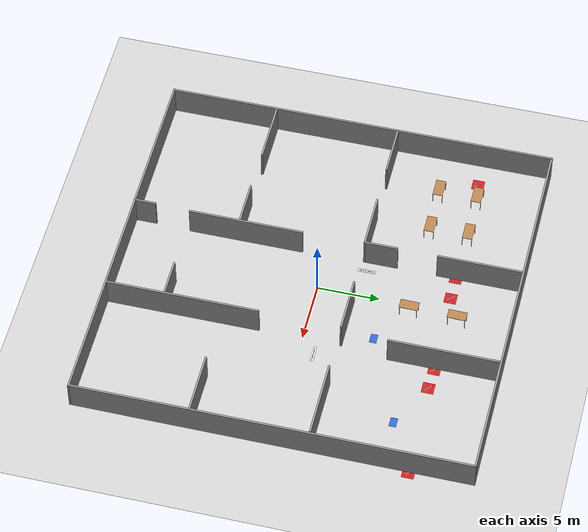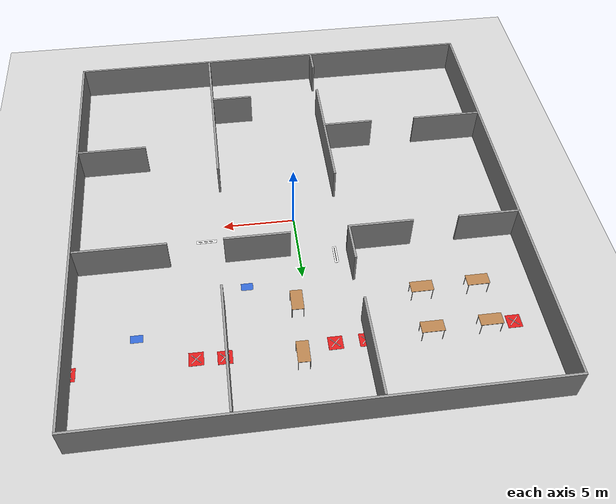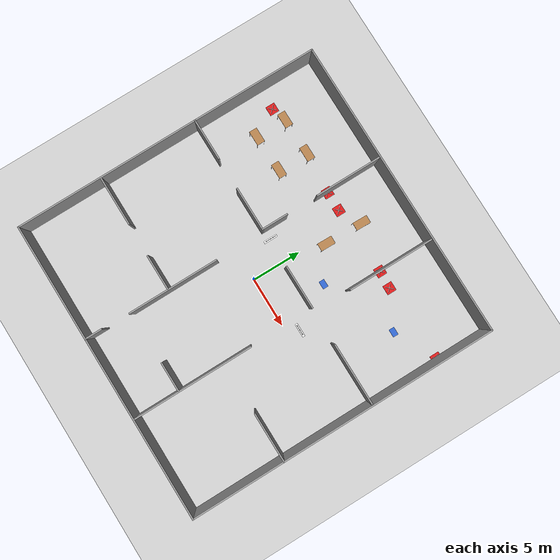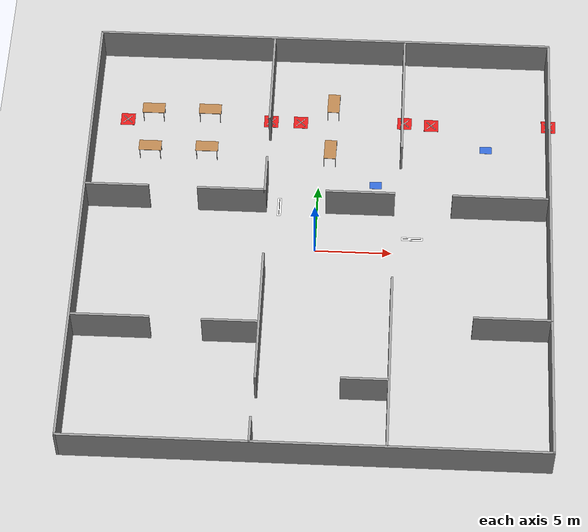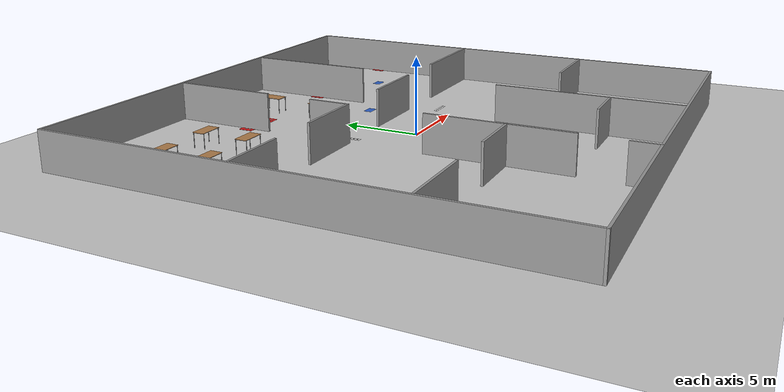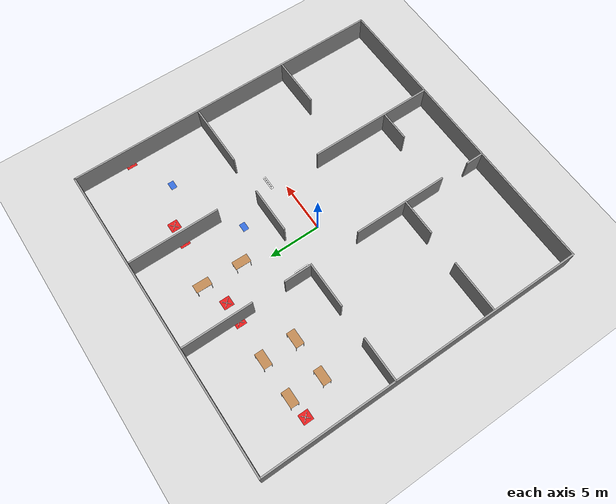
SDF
<sdf version="1.7">
 <world name="default">
  <model name="ground_plane">
   <static>1</static>
   <link name="link">
    <collision name="collision">
     <geometry><plane><normal>0 0 1</normal><size>100 100</size></plane></geometry>
     <surface>
      <contact><collide_bitmask>65535</collide_bitmask></contact>
      <friction><ode><mu>100</mu><mu2>50</mu2></ode></friction>
     </surface>
    </collision>
    <visual name="visual">
     <cast_shadows>0</cast_shadows>
     <geometry><plane><normal>0 0 1</normal><size>100 100</size></plane></geometry>
     <material>
      <script><uri>file://media/materials/scripts/gazebo.material</uri><name>Gazebo/Grey</name></script>
     </material>
    </visual>
   </link>
  </model>
  <model name="study">
   <link name="Wall_0">
    <collision name="Wall_0_Collision">
     <geometry><box><size>30.5 0.15 2.5</size></box></geometry>
     <pose>0 0 1.25 0 -0 0</pose>
    </collision>
    <visual name="Wall_0_Visual">
     <pose>0 0 1.25 0 -0 0</pose>
     <geometry><box><size>30.5 0.15 2.5</size></box></geometry>
     <material>
      <script><uri>file://media/materials/scripts/gazebo.material</uri><name>Gazebo/Grey</name></script>
      <ambient>1 1 1 1</ambient>
     </material>
     <meta><layer>0</layer></meta>
    </visual>
    <pose>0 15.675 0 0 -0 0</pose>
   </link>
   <link name="Wall_1">
    <collision name="Wall_1_Collision">
     <geometry><box><size>31.5 0.15 2.5</size></box></geometry>
     <pose>0 0 1.25 0 -0 0</pose>
    </collision>
    <visual name="Wall_1_Visual">
     <pose>0 0 1.25 0 -0 0</pose>
     <geometry><box><size>31.5 0.15 2.5</size></box></geometry>
     <material>
      <script><uri>file://media/materials/scripts/gazebo.material</uri><name>Gazebo/Grey</name></script>
      <ambient>1 1 1 1</ambient>
     </material>
     <meta><layer>0</layer></meta>
    </visual>
    <pose>15.175 -0 0 0 -0 -1.5708</pose>
   </link>
   <link name="Wall_10">
    <collision name="Wall_10_Collision">
     <geometry><box><size>4.25 0.15 2.5</size></box></geometry>
     <pose>0 0 1.25 0 -0 0</pose>
    </collision>
    <visual name="Wall_10_Visual">
     <pose>0 0 1.25 0 -0 0</pose>
     <geometry><box><size>4.25 0.15 2.5</size></box></geometry>
     <material>
      <script><uri>file://media/materials/scripts/gazebo.material</uri><name>Gazebo/Grey</name></script>
      <ambient>1 1 1 1</ambient>
     </material>
     <meta><layer>0</layer></meta>
    </visual>
    <pose>-13.0898 3.04582 0 0 -0 0</pose>
   </link>
   <link name="Wall_12">
    <collision name="Wall_12_Collision">
     <geometry><box><size>4.5 0.15 2.5</size></box></geometry>
     <pose>0 0 1.25 0 -0 0</pose>
    </collision>
    <visual name="Wall_12_Visual">
     <pose>0 0 1.25 0 -0 0</pose>
     <geometry><box><size>4.5 0.15 2.5</size></box></geometry>
     <material>
      <script><uri>file://media/materials/scripts/gazebo.material</uri><name>Gazebo/Grey</name></script>
      <ambient>1 1 1 1</ambient>
     </material>
     <meta><layer>0</layer></meta>
    </visual>
    <pose>2.83044 3.081 0 0 -0 0</pose>
   </link>
   <link name="Wall_14">
    <collision name="Wall_14_Collision">
     <geometry><box><size>6.25 0.15 2.5</size></box></geometry>
     <pose>0 0 1.25 0 -0 0</pose>
    </collision>
    <visual name="Wall_14_Visual">
     <pose>0 0 1.25 0 -0 0</pose>
     <geometry><box><size>6.25 0.15 2.5</size></box></geometry>
     <material>
      <script><uri>file://media/materials/scripts/gazebo.material</uri><name>Gazebo/Grey</name></script>
      <ambient>1 1 1 1</ambient>
     </material>
     <meta><layer>0</layer></meta>
    </visual>
    <pose>11.9373 3.04582 0 0 -0 0</pose>
   </link>
   <link name="Wall_16">
    <collision name="Wall_16_Collision">
     <geometry><box><size>5 0.15 2.5</size></box></geometry>
     <pose>0 0 1.25 0 -0 0</pose>
    </collision>
    <visual name="Wall_16_Visual">
     <pose>0 0 1.25 0 -0 0</pose>
     <geometry><box><size>5 0.15 2.5</size></box></geometry>
     <material>
      <script><uri>file://media/materials/scripts/gazebo.material</uri><name>Gazebo/Grey</name></script>
      <ambient>1 1 1 1</ambient>
     </material>
     <meta><layer>0</layer></meta>
    </visual>
    <pose>-12.6093 -7.0153 0 0 -0 0</pose>
   </link>
   <link name="Wall_18">
    <collision name="Wall_18_Collision">
     <geometry><box><size>3.604 0.15 2.5</size></box></geometry>
     <pose>0 0 1.25 0 -0 0</pose>
    </collision>
    <visual name="Wall_18_Visual">
     <pose>0 0 1.25 0 -0 0</pose>
     <geometry><box><size>3.604 0.15 2.5</size></box></geometry>
     <material>
      <script><uri>file://media/materials/scripts/gazebo.material</uri><name>Gazebo/Grey</name></script>
      <ambient>1 1 1 1</ambient>
     </material>
     <meta><layer>0</layer></meta>
    </visual>
    <pose>-5.04028 -7.08345 0 0 -0 0.001282</pose>
   </link>
   <link name="Wall_2">
    <collision name="Wall_2_Collision">
     <geometry><box><size>30.5 0.15 2.5</size></box></geometry>
     <pose>0 0 1.25 0 -0 0</pose>
    </collision>
    <visual name="Wall_2_Visual">
     <pose>0 0 1.25 0 -0 0</pose>
     <geometry><box><size>30.5 0.15 2.5</size></box></geometry>
     <material>
      <script><uri>file://media/materials/scripts/gazebo.material</uri><name>Gazebo/Grey</name></script>
      <ambient>1 1 1 1</ambient>
     </material>
     <meta><layer>0</layer></meta>
    </visual>
    <pose>0 -15.675 0 0 -0 3.14159</pose>
   </link>
   <link name="Wall_20">
    <collision name="Wall_20_Collision">
     <geometry><box><size>9.25 0.15 2.5</size></box></geometry>
     <pose>0 0 1.25 0 -0 0</pose>
    </collision>
    <visual name="Wall_20_Visual">
     <pose>0 0 1.25 0 -0 0</pose>
     <geometry><box><size>9.25 0.15 2.5</size></box></geometry>
     <material>
      <script><uri>file://media/materials/scripts/gazebo.material</uri><name>Gazebo/Grey</name></script>
      <ambient>1 1 1 1</ambient>
     </material>
     <meta><layer>0</layer></meta>
    </visual>
    <pose>-3.21422 -6.56992 0 0 -0 -1.5708</pose>
   </link>
   <link name="Wall_25">
    <collision name="Wall_25_Collision">
     <geometry><box><size>1.75 0.15 2.5</size></box></geometry>
     <pose>0 0 1.25 0 -0 0</pose>
    </collision>
    <visual name="Wall_25_Visual">
     <pose>0 0 1.25 0 -0 0</pose>
     <geometry><box><size>1.75 0.15 2.5</size></box></geometry>
     <material>
      <script><uri>file://media/materials/scripts/gazebo.material</uri><name>Gazebo/Grey</name></script>
      <ambient>1 1 1 1</ambient>
     </material>
     <meta><layer>0</layer></meta>
    </visual>
    <pose>-3.32253 -14.8206 0 0 -0 1.5708</pose>
   </link>
   <link name="Wall_27">
    <collision name="Wall_27_Collision">
     <geometry><box><size>12.25 0.15 2.5</size></box></geometry>
     <pose>0 0 1.25 0 -0 0</pose>
    </collision>
    <visual name="Wall_27_Visual">
     <pose>0 0 1.25 0 -0 0</pose>
     <geometry><box><size>12.25 0.15 2.5</size></box></geometry>
     <material>
      <script><uri>file://media/materials/scripts/gazebo.material</uri><name>Gazebo/Grey</name></script>
      <ambient>1 1 1 1</ambient>
     </material>
     <meta><layer>0</layer></meta>
    </visual>
    <pose>5.05747 -9.53064 0 0 -0 1.5708</pose>
   </link>
   <link name="Wall_29">
    <collision name="Wall_29_Collision">
     <geometry><box><size>8.75 0.15 2.5</size></box></geometry>
     <pose>0 0 1.25 0 -0 0</pose>
    </collision>
    <visual name="Wall_29_Visual">
     <pose>0 0 1.25 0 -0 0</pose>
     <geometry><box><size>8.75 0.15 2.5</size></box></geometry>
     <material>
      <script><uri>file://media/materials/scripts/gazebo.material</uri><name>Gazebo/Grey</name></script>
      <ambient>1 1 1 1</ambient>
     </material>
     <meta><layer>0</layer></meta>
    </visual>
    <pose>5.43881 11.1887 0 0 -0 -1.5708</pose>
   </link>
   <link name="Wall_3">
    <collision name="Wall_3_Collision">
     <geometry><box><size>31.5 0.15 2.5</size></box></geometry>
     <pose>0 0 1.25 0 -0 0</pose>
    </collision>
    <visual name="Wall_3_Visual">
     <pose>0 0 1.25 0 -0 0</pose>
     <geometry><box><size>31.5 0.15 2.5</size></box></geometry>
     <material>
      <script><uri>file://media/materials/scripts/gazebo.material</uri><name>Gazebo/Grey</name></script>
      <ambient>1 1 1 1</ambient>
     </material>
     <meta><layer>0</layer></meta>
    </visual>
    <pose>-15.175 -0 0 0 -0 1.5708</pose>
   </link>
   <link name="Wall_31">
    <collision name="Wall_31_Collision">
     <geometry><box><size>5 0.15 2.5</size></box></geometry>
     <pose>0 0 1.25 0 -0 0</pose>
    </collision>
    <visual name="Wall_31_Visual">
     <pose>0 0 1.25 0 -0 0</pose>
     <geometry><box><size>5 0.15 2.5</size></box></geometry>
     <material>
      <script><uri>file://media/materials/scripts/gazebo.material</uri><name>Gazebo/Grey</name></script>
      <ambient>1 1 1 1</ambient>
     </material>
     <meta><layer>0</layer></meta>
    </visual>
    <pose>12.7212 -6.25406 0 0 -0 0</pose>
   </link>
   <link name="Wall_33">
    <collision name="Wall_33_Collision">
     <geometry><box><size>3 0.15 2.5</size></box></geometry>
     <pose>0 0 1.25 0 -0 0</pose>
    </collision>
    <visual name="Wall_33_Visual">
     <pose>0 0 1.25 0 -0 0</pose>
     <geometry><box><size>3 0.15 2.5</size></box></geometry>
     <material>
      <script><uri>file://media/materials/scripts/gazebo.material</uri><name>Gazebo/Grey</name></script>
      <ambient>1 1 1 1</ambient>
     </material>
     <meta><layer>0</layer></meta>
    </visual>
    <pose>3.533 -10.9727 0 0 -0 0</pose>
   </link>
   <link name="Wall_5">
    <collision name="Wall_5_Collision">
     <geometry><box><size>6.75 0.15 2.5</size></box></geometry>
     <pose>0 0 1.25 0 -0 0</pose>
    </collision>
    <visual name="Wall_5_Visual">
     <pose>0 0 1.25 0 -0 0</pose>
     <geometry><box><size>6.75 0.15 2.5</size></box></geometry>
     <material>
      <script><uri>file://media/materials/scripts/gazebo.material</uri><name>Gazebo/Grey</name></script>
      <ambient>1 1 1 1</ambient>
     </material>
     <meta><layer>0</layer></meta>
    </visual>
    <pose>-3.39011 12.1991 0 0 -0 -1.5708</pose>
   </link>
   <link name="Wall_7">
    <collision name="Wall_7_Collision">
     <geometry><box><size>2.75 0.15 2.5</size></box></geometry>
     <pose>0 0 1.25 0 -0 0</pose>
    </collision>
    <visual name="Wall_7_Visual">
     <pose>0 0 1.25 0 -0 0</pose>
     <geometry><box><size>2.75 0.15 2.5</size></box></geometry>
     <material>
      <script><uri>file://media/materials/scripts/gazebo.material</uri><name>Gazebo/Grey</name></script>
      <ambient>1 1 1 1</ambient>
     </material>
     <meta><layer>0</layer></meta>
    </visual>
    <pose>-3.39011 4.31387 0 0 -0 -1.5708</pose>
   </link>
   <link name="Wall_8">
    <collision name="Wall_8_Collision">
     <geometry><box><size>4.5 0.15 2.5</size></box></geometry>
     <pose>0 0 1.25 0 -0 0</pose>
    </collision>
    <visual name="Wall_8_Visual">
     <pose>0 0 1.25 0 -0 0</pose>
     <geometry><box><size>4.5 0.15 2.5</size></box></geometry>
     <material>
      <script><uri>file://media/materials/scripts/gazebo.material</uri><name>Gazebo/Grey</name></script>
      <ambient>1 1 1 1</ambient>
     </material>
     <meta><layer>0</layer></meta>
    </visual>
    <pose>-5.56511 3.01387 0 0 -0 3.14159</pose>
   </link>
   <static>1</static>
  </model>
  <model name="table">
   <static>1</static>
   <link name="link">
    <collision name="surface">
     <pose>0 0 1 0 -0 0</pose>
     <geometry><box><size>1.5 0.8 0.03</size></box></geometry>
     <surface><friction><ode><mu>0.6</mu><mu2>0.6</mu2></ode></friction></surface>
    </collision>
    <visual name="visual1">
     <pose>0 0 1 0 -0 0</pose>
     <geometry><box><size>1.5 0.8 0.03</size></box></geometry>
     <material>
      <script><uri>file://media/materials/scripts/gazebo.material</uri><name>Gazebo/Wood</name></script>
     </material>
    </visual>
    <collision name="front_left_leg">
     <pose>0.68 0.38 0.5 0 -0 0</pose>
     <geometry><cylinder><radius>0.02</radius><length>1</length></cylinder></geometry>
    </collision>
    <visual name="front_left_leg_visual">
     <pose>0.68 0.38 0.5 0 -0 0</pose>
     <geometry><cylinder><radius>0.02</radius><length>1</length></cylinder></geometry>
     <material>
      <script><uri>file://media/materials/scripts/gazebo.material</uri><name>Gazebo/Grey</name></script>
     </material>
    </visual>
    <collision name="front_right_leg">
     <pose>0.68 -0.38 0.5 0 -0 0</pose>
     <geometry><cylinder><radius>0.02</radius><length>1</length></cylinder></geometry>
    </collision>
    <visual name="front_right_leg_visual">
     <pose>0.68 -0.38 0.5 0 -0 0</pose>
     <geometry><cylinder><radius>0.02</radius><length>1</length></cylinder></geometry>
     <material>
      <script><uri>file://media/materials/scripts/gazebo.material</uri><name>Gazebo/Grey</name></script>
     </material>
    </visual>
    <collision name="back_right_leg">
     <pose>-0.68 -0.38 0.5 0 -0 0</pose>
     <geometry><cylinder><radius>0.02</radius><length>1</length></cylinder></geometry>
    </collision>
    <visual name="back_right_leg_visual">
     <pose>-0.68 -0.38 0.5 0 -0 0</pose>
     <geometry><cylinder><radius>0.02</radius><length>1</length></cylinder></geometry>
     <material>
      <script><uri>file://media/materials/scripts/gazebo.material</uri><name>Gazebo/Grey</name></script>
     </material>
    </visual>
    <collision name="back_left_leg">
     <pose>-0.68 0.38 0.5 0 -0 0</pose>
     <geometry><cylinder><radius>0.02</radius><length>1</length></cylinder></geometry>
    </collision>
    <visual name="back_left_leg_visual">
     <pose>-0.68 0.38 0.5 0 -0 0</pose>
     <geometry><cylinder><radius>0.02</radius><length>1</length></cylinder></geometry>
     <material>
      <script><uri>file://media/materials/scripts/gazebo.material</uri><name>Gazebo/Grey</name></script>
     </material>
    </visual>
   </link>
   <pose>-11.3135 10.4731 0 0 -0 0</pose>
  </model>
  <model name="table_0">
   <static>1</static>
   <link name="link">
    <collision name="surface">
     <pose>0 0 1 0 -0 0</pose>
     <geometry><box><size>1.5 0.8 0.03</size></box></geometry>
     <surface><friction><ode><mu>0.6</mu><mu2>0.6</mu2></ode></friction></surface>
    </collision>
    <visual name="visual1">
     <pose>0 0 1 0 -0 0</pose>
     <geometry><box><size>1.5 0.8 0.03</size></box></geometry>
     <material>
      <script><uri>file://media/materials/scripts/gazebo.material</uri><name>Gazebo/Wood</name></script>
     </material>
    </visual>
    <collision name="front_left_leg">
     <pose>0.68 0.38 0.5 0 -0 0</pose>
     <geometry><cylinder><radius>0.02</radius><length>1</length></cylinder></geometry>
    </collision>
    <visual name="front_left_leg_visual">
     <pose>0.68 0.38 0.5 0 -0 0</pose>
     <geometry><cylinder><radius>0.02</radius><length>1</length></cylinder></geometry>
     <material>
      <script><uri>file://media/materials/scripts/gazebo.material</uri><name>Gazebo/Grey</name></script>
     </material>
    </visual>
    <collision name="front_right_leg">
     <pose>0.68 -0.38 0.5 0 -0 0</pose>
     <geometry><cylinder><radius>0.02</radius><length>1</length></cylinder></geometry>
    </collision>
    <visual name="front_right_leg_visual">
     <pose>0.68 -0.38 0.5 0 -0 0</pose>
     <geometry><cylinder><radius>0.02</radius><length>1</length></cylinder></geometry>
     <material>
      <script><uri>file://media/materials/scripts/gazebo.material</uri><name>Gazebo/Grey</name></script>
     </material>
    </visual>
    <collision name="back_right_leg">
     <pose>-0.68 -0.38 0.5 0 -0 0</pose>
     <geometry><cylinder><radius>0.02</radius><length>1</length></cylinder></geometry>
    </collision>
    <visual name="back_right_leg_visual">
     <pose>-0.68 -0.38 0.5 0 -0 0</pose>
     <geometry><cylinder><radius>0.02</radius><length>1</length></cylinder></geometry>
     <material>
      <script><uri>file://media/materials/scripts/gazebo.material</uri><name>Gazebo/Grey</name></script>
     </material>
    </visual>
    <collision name="back_left_leg">
     <pose>-0.68 0.38 0.5 0 -0 0</pose>
     <geometry><cylinder><radius>0.02</radius><length>1</length></cylinder></geometry>
    </collision>
    <visual name="back_left_leg_visual">
     <pose>-0.68 0.38 0.5 0 -0 0</pose>
     <geometry><cylinder><radius>0.02</radius><length>1</length></cylinder></geometry>
     <material>
      <script><uri>file://media/materials/scripts/gazebo.material</uri><name>Gazebo/Grey</name></script>
     </material>
    </visual>
   </link>
   <pose>-7.51149 10.544 0 0 -0 0</pose>
  </model>
  <model name="table_1">
   <static>1</static>
   <link name="link">
    <collision name="surface">
     <pose>0 0 1 0 -0 0</pose>
     <geometry><box><size>1.5 0.8 0.03</size></box></geometry>
     <surface><friction><ode><mu>0.6</mu><mu2>0.6</mu2></ode></friction></surface>
    </collision>
    <visual name="visual1">
     <pose>0 0 1 0 -0 0</pose>
     <geometry><box><size>1.5 0.8 0.03</size></box></geometry>
     <material>
      <script><uri>file://media/materials/scripts/gazebo.material</uri><name>Gazebo/Wood</name></script>
     </material>
    </visual>
    <collision name="front_left_leg">
     <pose>0.68 0.38 0.5 0 -0 0</pose>
     <geometry><cylinder><radius>0.02</radius><length>1</length></cylinder></geometry>
    </collision>
    <visual name="front_left_leg_visual">
     <pose>0.68 0.38 0.5 0 -0 0</pose>
     <geometry><cylinder><radius>0.02</radius><length>1</length></cylinder></geometry>
     <material>
      <script><uri>file://media/materials/scripts/gazebo.material</uri><name>Gazebo/Grey</name></script>
     </material>
    </visual>
    <collision name="front_right_leg">
     <pose>0.68 -0.38 0.5 0 -0 0</pose>
     <geometry><cylinder><radius>0.02</radius><length>1</length></cylinder></geometry>
    </collision>
    <visual name="front_right_leg_visual">
     <pose>0.68 -0.38 0.5 0 -0 0</pose>
     <geometry><cylinder><radius>0.02</radius><length>1</length></cylinder></geometry>
     <material>
      <script><uri>file://media/materials/scripts/gazebo.material</uri><name>Gazebo/Grey</name></script>
     </material>
    </visual>
    <collision name="back_right_leg">
     <pose>-0.68 -0.38 0.5 0 -0 0</pose>
     <geometry><cylinder><radius>0.02</radius><length>1</length></cylinder></geometry>
    </collision>
    <visual name="back_right_leg_visual">
     <pose>-0.68 -0.38 0.5 0 -0 0</pose>
     <geometry><cylinder><radius>0.02</radius><length>1</length></cylinder></geometry>
     <material>
      <script><uri>file://media/materials/scripts/gazebo.material</uri><name>Gazebo/Grey</name></script>
     </material>
    </visual>
    <collision name="back_left_leg">
     <pose>-0.68 0.38 0.5 0 -0 0</pose>
     <geometry><cylinder><radius>0.02</radius><length>1</length></cylinder></geometry>
    </collision>
    <visual name="back_left_leg_visual">
     <pose>-0.68 0.38 0.5 0 -0 0</pose>
     <geometry><cylinder><radius>0.02</radius><length>1</length></cylinder></geometry>
     <material>
      <script><uri>file://media/materials/scripts/gazebo.material</uri><name>Gazebo/Grey</name></script>
     </material>
    </visual>
   </link>
   <pose>-11.313 7.35243 0 0 -0 0</pose>
  </model>
  <model name="table_2">
   <static>1</static>
   <link name="link">
    <collision name="surface">
     <pose>0 0 1 0 -0 0</pose>
     <geometry><box><size>1.5 0.8 0.03</size></box></geometry>
     <surface><friction><ode><mu>0.6</mu><mu2>0.6</mu2></ode></friction></surface>
    </collision>
    <visual name="visual1">
     <pose>0 0 1 0 -0 0</pose>
     <geometry><box><size>1.5 0.8 0.03</size></box></geometry>
     <material>
      <script><uri>file://media/materials/scripts/gazebo.material</uri><name>Gazebo/Wood</name></script>
     </material>
    </visual>
    <collision name="front_left_leg">
     <pose>0.68 0.38 0.5 0 -0 0</pose>
     <geometry><cylinder><radius>0.02</radius><length>1</length></cylinder></geometry>
    </collision>
    <visual name="front_left_leg_visual">
     <pose>0.68 0.38 0.5 0 -0 0</pose>
     <geometry><cylinder><radius>0.02</radius><length>1</length></cylinder></geometry>
     <material>
      <script><uri>file://media/materials/scripts/gazebo.material</uri><name>Gazebo/Grey</name></script>
     </material>
    </visual>
    <collision name="front_right_leg">
     <pose>0.68 -0.38 0.5 0 -0 0</pose>
     <geometry><cylinder><radius>0.02</radius><length>1</length></cylinder></geometry>
    </collision>
    <visual name="front_right_leg_visual">
     <pose>0.68 -0.38 0.5 0 -0 0</pose>
     <geometry><cylinder><radius>0.02</radius><length>1</length></cylinder></geometry>
     <material>
      <script><uri>file://media/materials/scripts/gazebo.material</uri><name>Gazebo/Grey</name></script>
     </material>
    </visual>
    <collision name="back_right_leg">
     <pose>-0.68 -0.38 0.5 0 -0 0</pose>
     <geometry><cylinder><radius>0.02</radius><length>1</length></cylinder></geometry>
    </collision>
    <visual name="back_right_leg_visual">
     <pose>-0.68 -0.38 0.5 0 -0 0</pose>
     <geometry><cylinder><radius>0.02</radius><length>1</length></cylinder></geometry>
     <material>
      <script><uri>file://media/materials/scripts/gazebo.material</uri><name>Gazebo/Grey</name></script>
     </material>
    </visual>
    <collision name="back_left_leg">
     <pose>-0.68 0.38 0.5 0 -0 0</pose>
     <geometry><cylinder><radius>0.02</radius><length>1</length></cylinder></geometry>
    </collision>
    <visual name="back_left_leg_visual">
     <pose>-0.68 0.38 0.5 0 -0 0</pose>
     <geometry><cylinder><radius>0.02</radius><length>1</length></cylinder></geometry>
     <material>
      <script><uri>file://media/materials/scripts/gazebo.material</uri><name>Gazebo/Grey</name></script>
     </material>
    </visual>
   </link>
   <pose>-7.53214 7.43757 0 0 -0 0</pose>
  </model>
  <model name="table_3">
   <static>1</static>
   <link name="link">
    <collision name="surface">
     <pose>0 0 1 0 -0 0</pose>
     <geometry><box><size>1.5 0.8 0.03</size></box></geometry>
     <surface><friction><ode><mu>0.6</mu><mu2>0.6</mu2></ode></friction></surface>
    </collision>
    <visual name="visual1">
     <pose>0 0 1 0 -0 0</pose>
     <geometry><box><size>1.5 0.8 0.03</size></box></geometry>
     <material>
      <script><uri>file://media/materials/scripts/gazebo.material</uri><name>Gazebo/Wood</name></script>
     </material>
    </visual>
    <collision name="front_left_leg">
     <pose>0.68 0.38 0.5 0 -0 0</pose>
     <geometry><cylinder><radius>0.02</radius><length>1</length></cylinder></geometry>
    </collision>
    <visual name="front_left_leg_visual">
     <pose>0.68 0.38 0.5 0 -0 0</pose>
     <geometry><cylinder><radius>0.02</radius><length>1</length></cylinder></geometry>
     <material>
      <script><uri>file://media/materials/scripts/gazebo.material</uri><name>Gazebo/Grey</name></script>
     </material>
    </visual>
    <collision name="front_right_leg">
     <pose>0.68 -0.38 0.5 0 -0 0</pose>
     <geometry><cylinder><radius>0.02</radius><length>1</length></cylinder></geometry>
    </collision>
    <visual name="front_right_leg_visual">
     <pose>0.68 -0.38 0.5 0 -0 0</pose>
     <geometry><cylinder><radius>0.02</radius><length>1</length></cylinder></geometry>
     <material>
      <script><uri>file://media/materials/scripts/gazebo.material</uri><name>Gazebo/Grey</name></script>
     </material>
    </visual>
    <collision name="back_right_leg">
     <pose>-0.68 -0.38 0.5 0 -0 0</pose>
     <geometry><cylinder><radius>0.02</radius><length>1</length></cylinder></geometry>
    </collision>
    <visual name="back_right_leg_visual">
     <pose>-0.68 -0.38 0.5 0 -0 0</pose>
     <geometry><cylinder><radius>0.02</radius><length>1</length></cylinder></geometry>
     <material>
      <script><uri>file://media/materials/scripts/gazebo.material</uri><name>Gazebo/Grey</name></script>
     </material>
    </visual>
    <collision name="back_left_leg">
     <pose>-0.68 0.38 0.5 0 -0 0</pose>
     <geometry><cylinder><radius>0.02</radius><length>1</length></cylinder></geometry>
    </collision>
    <visual name="back_left_leg_visual">
     <pose>-0.68 0.38 0.5 0 -0 0</pose>
     <geometry><cylinder><radius>0.02</radius><length>1</length></cylinder></geometry>
     <material>
      <script><uri>file://media/materials/scripts/gazebo.material</uri><name>Gazebo/Grey</name></script>
     </material>
    </visual>
   </link>
   <pose>0.794536 11.3446 0 0 0 -1.58819</pose>
  </model>
  <model name="table_3_clone">
   <static>1</static>
   <link name="link">
    <collision name="surface">
     <pose>0 0 1 0 -0 0</pose>
     <geometry><box><size>1.5 0.8 0.03</size></box></geometry>
     <surface><friction><ode><mu>0.6</mu><mu2>0.6</mu2></ode></friction></surface>
    </collision>
    <visual name="visual1">
     <pose>0 0 1 0 -0 0</pose>
     <geometry><box><size>1.5 0.8 0.03</size></box></geometry>
     <material>
      <script><uri>file://media/materials/scripts/gazebo.material</uri><name>Gazebo/Wood</name></script>
     </material>
    </visual>
    <collision name="front_left_leg">
     <pose>0.68 0.38 0.5 0 -0 0</pose>
     <geometry><cylinder><radius>0.02</radius><length>1</length></cylinder></geometry>
    </collision>
    <visual name="front_left_leg_visual">
     <pose>0.68 0.38 0.5 0 -0 0</pose>
     <geometry><cylinder><radius>0.02</radius><length>1</length></cylinder></geometry>
     <material>
      <script><uri>file://media/materials/scripts/gazebo.material</uri><name>Gazebo/Grey</name></script>
     </material>
    </visual>
    <collision name="front_right_leg">
     <pose>0.68 -0.38 0.5 0 -0 0</pose>
     <geometry><cylinder><radius>0.02</radius><length>1</length></cylinder></geometry>
    </collision>
    <visual name="front_right_leg_visual">
     <pose>0.68 -0.38 0.5 0 -0 0</pose>
     <geometry><cylinder><radius>0.02</radius><length>1</length></cylinder></geometry>
     <material>
      <script><uri>file://media/materials/scripts/gazebo.material</uri><name>Gazebo/Grey</name></script>
     </material>
    </visual>
    <collision name="back_right_leg">
     <pose>-0.68 -0.38 0.5 0 -0 0</pose>
     <geometry><cylinder><radius>0.02</radius><length>1</length></cylinder></geometry>
    </collision>
    <visual name="back_right_leg_visual">
     <pose>-0.68 -0.38 0.5 0 -0 0</pose>
     <geometry><cylinder><radius>0.02</radius><length>1</length></cylinder></geometry>
     <material>
      <script><uri>file://media/materials/scripts/gazebo.material</uri><name>Gazebo/Grey</name></script>
     </material>
    </visual>
    <collision name="back_left_leg">
     <pose>-0.68 0.38 0.5 0 -0 0</pose>
     <geometry><cylinder><radius>0.02</radius><length>1</length></cylinder></geometry>
    </collision>
    <visual name="back_left_leg_visual">
     <pose>-0.68 0.38 0.5 0 -0 0</pose>
     <geometry><cylinder><radius>0.02</radius><length>1</length></cylinder></geometry>
     <material>
      <script><uri>file://media/materials/scripts/gazebo.material</uri><name>Gazebo/Grey</name></script>
     </material>
    </visual>
   </link>
   <pose>0.704578 7.50679 0 0 0 -1.58819</pose>
  </model>
  <model name="semantic_marker_door_1">
   <static>true</static>
   <pose>-2.50 3.40 0 0 0 1.5708</pose>
   <link name="link">
    <visual name="door_patch">
     <pose>0 0 0.005 0 0 0</pose>
     <geometry><box><size>1.40 0.26 0.01</size></box></geometry>
     <material><ambient>0.96 0.96 0.96 1</ambient><diffuse>0.96 0.96 0.96 1</diffuse></material>
    </visual>
    <visual name="door_center_line">
     <pose>0 0 0.011 0 0 0</pose>
     <geometry><box><size>1.22 0.03 0.005</size></box></geometry>
     <material><ambient>0.15 0.15 0.15 1</ambient><diffuse>0.15 0.15 0.15 1</diffuse></material>
    </visual>
   </link>
  </model>
  <model name="semantic_marker_door_3">
   <static>true</static>
   <pose>6.30 1.20 0 0 0 0.0000</pose>
   <link name="link">
    <visual name="door_patch">
     <pose>0 0 0.005 0 0 0</pose>
     <geometry><box><size>1.40 0.26 0.01</size></box></geometry>
     <material><ambient>0.96 0.96 0.96 1</ambient><diffuse>0.96 0.96 0.96 1</diffuse></material>
    </visual>
    <visual name="door_center_line">
     <pose>0 0 0.011 0 0 0</pose>
     <geometry><box><size>1.22 0.03 0.005</size></box></geometry>
     <material><ambient>0.15 0.15 0.15 1</ambient><diffuse>0.15 0.15 0.15 1</diffuse></material>
    </visual>
   </link>
  </model>
  <model name="semantic_marker_dead_end_0">
   <static>true</static>
   <pose>15.30 10.70 0 0 0 0.0000</pose>
   <link name="link">
    <visual name="dead_end_patch">
     <pose>0 0 0.005 0 0 0</pose>
     <geometry><box><size>0.95 0.95 0.01</size></box></geometry>
     <material><ambient>0.85 0.10 0.10 1</ambient><diffuse>0.85 0.10 0.10 1</diffuse></material>
    </visual>
    <visual name="cross_bar_a">
     <pose>0 0 0.011 0 0 0.78</pose>
     <geometry><box><size>0.83 0.05 0.005</size></box></geometry>
     <material><ambient>0.98 0.98 0.98 1</ambient><diffuse>0.98 0.98 0.98 1</diffuse></material>
    </visual>
    <visual name="cross_bar_b">
     <pose>0 0 0.011 0 0 -0.78</pose>
     <geometry><box><size>0.83 0.05 0.005</size></box></geometry>
     <material><ambient>0.98 0.98 0.98 1</ambient><diffuse>0.98 0.98 0.98 1</diffuse></material>
    </visual>
   </link>
  </model>
  <model name="semantic_marker_dead_end_1">
   <static>true</static>
   <pose>7.40 10.50 0 0 0 0.0000</pose>
   <link name="link">
    <visual name="dead_end_patch">
     <pose>0 0 0.005 0 0 0</pose>
     <geometry><box><size>0.95 0.95 0.01</size></box></geometry>
     <material><ambient>0.85 0.10 0.10 1</ambient><diffuse>0.85 0.10 0.10 1</diffuse></material>
    </visual>
    <visual name="cross_bar_a">
     <pose>0 0 0.011 0 0 0.78</pose>
     <geometry><box><size>0.83 0.05 0.005</size></box></geometry>
     <material><ambient>0.98 0.98 0.98 1</ambient><diffuse>0.98 0.98 0.98 1</diffuse></material>
    </visual>
    <visual name="cross_bar_b">
     <pose>0 0 0.011 0 0 -0.78</pose>
     <geometry><box><size>0.83 0.05 0.005</size></box></geometry>
     <material><ambient>0.98 0.98 0.98 1</ambient><diffuse>0.98 0.98 0.98 1</diffuse></material>
    </visual>
   </link>
  </model>
  <model name="semantic_marker_dead_end_19">
   <static>true</static>
   <pose>-3.40 10.40 0 0 0 0.0000</pose>
   <link name="link">
    <visual name="dead_end_patch">
     <pose>0 0 0.005 0 0 0</pose>
     <geometry><box><size>0.95 0.95 0.01</size></box></geometry>
     <material><ambient>0.85 0.10 0.10 1</ambient><diffuse>0.85 0.10 0.10 1</diffuse></material>
    </visual>
    <visual name="cross_bar_a">
     <pose>0 0 0.011 0 0 0.78</pose>
     <geometry><box><size>0.83 0.05 0.005</size></box></geometry>
     <material><ambient>0.98 0.98 0.98 1</ambient><diffuse>0.98 0.98 0.98 1</diffuse></material>
    </visual>
    <visual name="cross_bar_b">
     <pose>0 0 0.011 0 0 -0.78</pose>
     <geometry><box><size>0.83 0.05 0.005</size></box></geometry>
     <material><ambient>0.98 0.98 0.98 1</ambient><diffuse>0.98 0.98 0.98 1</diffuse></material>
    </visual>
   </link>
  </model>
  <model name="semantic_marker_dead_end_20">
   <static>true</static>
   <pose>-13.10 10.20 0 0 0 0.0000</pose>
   <link name="link">
    <visual name="dead_end_patch">
     <pose>0 0 0.005 0 0 0</pose>
     <geometry><box><size>0.95 0.95 0.01</size></box></geometry>
     <material><ambient>0.85 0.10 0.10 1</ambient><diffuse>0.85 0.10 0.10 1</diffuse></material>
    </visual>
    <visual name="cross_bar_a">
     <pose>0 0 0.011 0 0 0.78</pose>
     <geometry><box><size>0.83 0.05 0.005</size></box></geometry>
     <material><ambient>0.98 0.98 0.98 1</ambient><diffuse>0.98 0.98 0.98 1</diffuse></material>
    </visual>
    <visual name="cross_bar_b">
     <pose>0 0 0.011 0 0 -0.78</pose>
     <geometry><box><size>0.83 0.05 0.005</size></box></geometry>
     <material><ambient>0.98 0.98 0.98 1</ambient><diffuse>0.98 0.98 0.98 1</diffuse></material>
    </visual>
   </link>
  </model>
  <model name="semantic_marker_dead_end_21">
   <static>true</static>
   <pose>-1.40 10.40 0 0 0 0.0000</pose>
   <link name="link">
    <visual name="dead_end_patch">
     <pose>0 0 0.005 0 0 0</pose>
     <geometry><box><size>0.95 0.95 0.01</size></box></geometry>
     <material><ambient>0.85 0.10 0.10 1</ambient><diffuse>0.85 0.10 0.10 1</diffuse></material>
    </visual>
    <visual name="cross_bar_a">
     <pose>0 0 0.011 0 0 0.78</pose>
     <geometry><box><size>0.83 0.05 0.005</size></box></geometry>
     <material><ambient>0.98 0.98 0.98 1</ambient><diffuse>0.98 0.98 0.98 1</diffuse></material>
    </visual>
    <visual name="cross_bar_b">
     <pose>0 0 0.011 0 0 -0.78</pose>
     <geometry><box><size>0.83 0.05 0.005</size></box></geometry>
     <material><ambient>0.98 0.98 0.98 1</ambient><diffuse>0.98 0.98 0.98 1</diffuse></material>
    </visual>
   </link>
  </model>
  <model name="semantic_marker_dead_end_22">
   <static>true</static>
   <pose>5.60 10.60 0 0 0 0.0000</pose>
   <link name="link">
    <visual name="dead_end_patch">
     <pose>0 0 0.005 0 0 0</pose>
     <geometry><box><size>0.95 0.95 0.01</size></box></geometry>
     <material><ambient>0.85 0.10 0.10 1</ambient><diffuse>0.85 0.10 0.10 1</diffuse></material>
    </visual>
    <visual name="cross_bar_a">
     <pose>0 0 0.011 0 0 0.78</pose>
     <geometry><box><size>0.83 0.05 0.005</size></box></geometry>
     <material><ambient>0.98 0.98 0.98 1</ambient><diffuse>0.98 0.98 0.98 1</diffuse></material>
    </visual>
    <visual name="cross_bar_b">
     <pose>0 0 0.011 0 0 -0.78</pose>
     <geometry><box><size>0.83 0.05 0.005</size></box></geometry>
     <material><ambient>0.98 0.98 0.98 1</ambient><diffuse>0.98 0.98 0.98 1</diffuse></material>
    </visual>
   </link>
  </model>
  <model name="semantic_marker_water_7">
   <static>true</static>
   <pose>11.10 8.60 0 0 0 0.0000</pose>
   <link name="link">
    <visual name="water_patch">
     <pose>0 0 0.005 0 0 0</pose>
     <geometry><box><size>0.80 0.55 0.01</size></box></geometry>
     <material>
      <ambient>0.10 0.35 0.85 0.82</ambient>
      <diffuse>0.10 0.35 0.85 0.82</diffuse>
      <specular>0.95 0.95 0.95 1</specular>
     </material>
    </visual>
   </link>
  </model>
  <model name="semantic_marker_water_8">
   <static>true</static>
   <pose>3.80 5.40 0 0 0 0.0000</pose>
   <link name="link">
    <visual name="water_patch">
     <pose>0 0 0.005 0 0 0</pose>
     <geometry><box><size>0.80 0.55 0.01</size></box></geometry>
     <material>
      <ambient>0.10 0.35 0.85 0.82</ambient>
      <diffuse>0.10 0.35 0.85 0.82</diffuse>
      <specular>0.95 0.95 0.95 1</specular>
     </material>
    </visual>
   </link>
  </model>
 </world>
</sdf>
